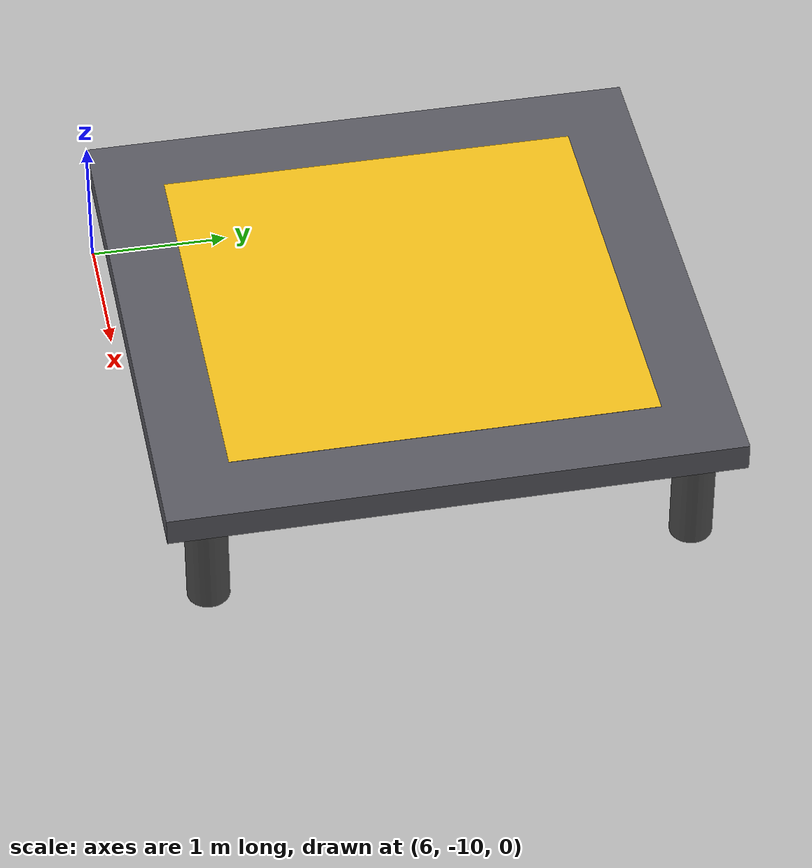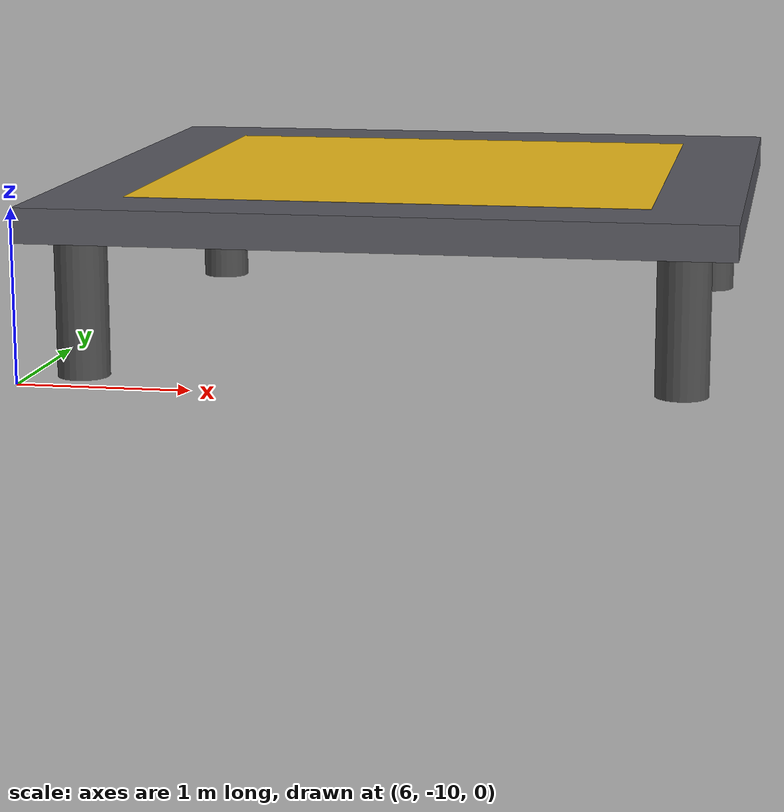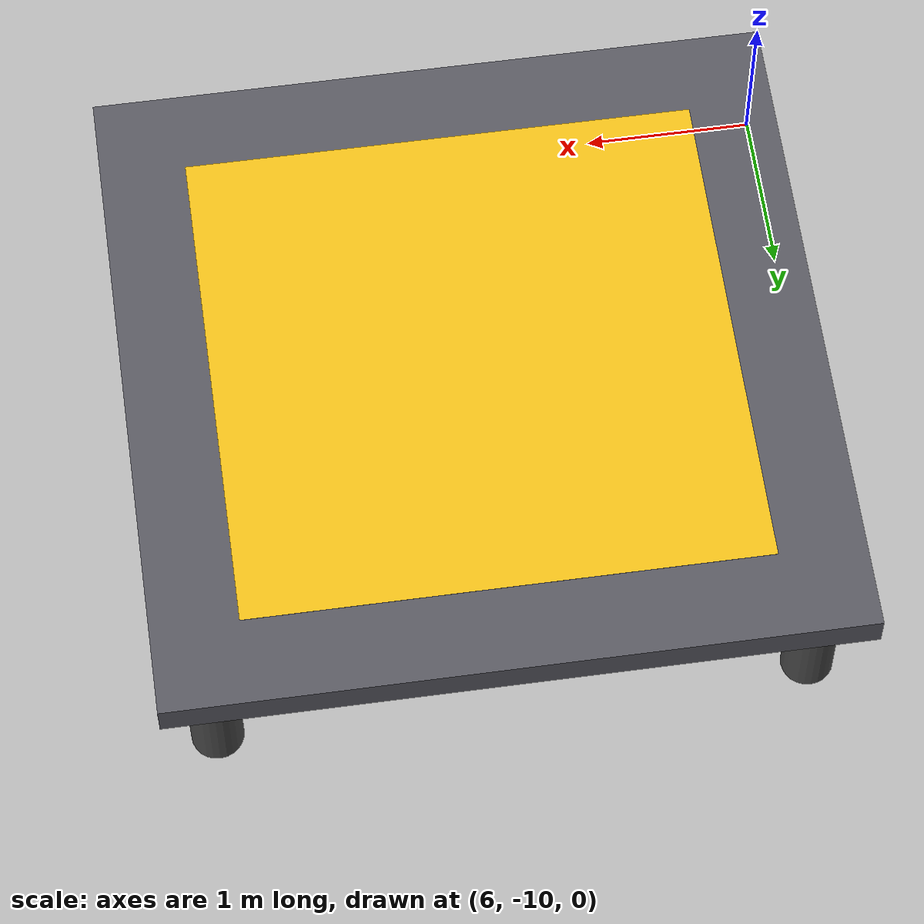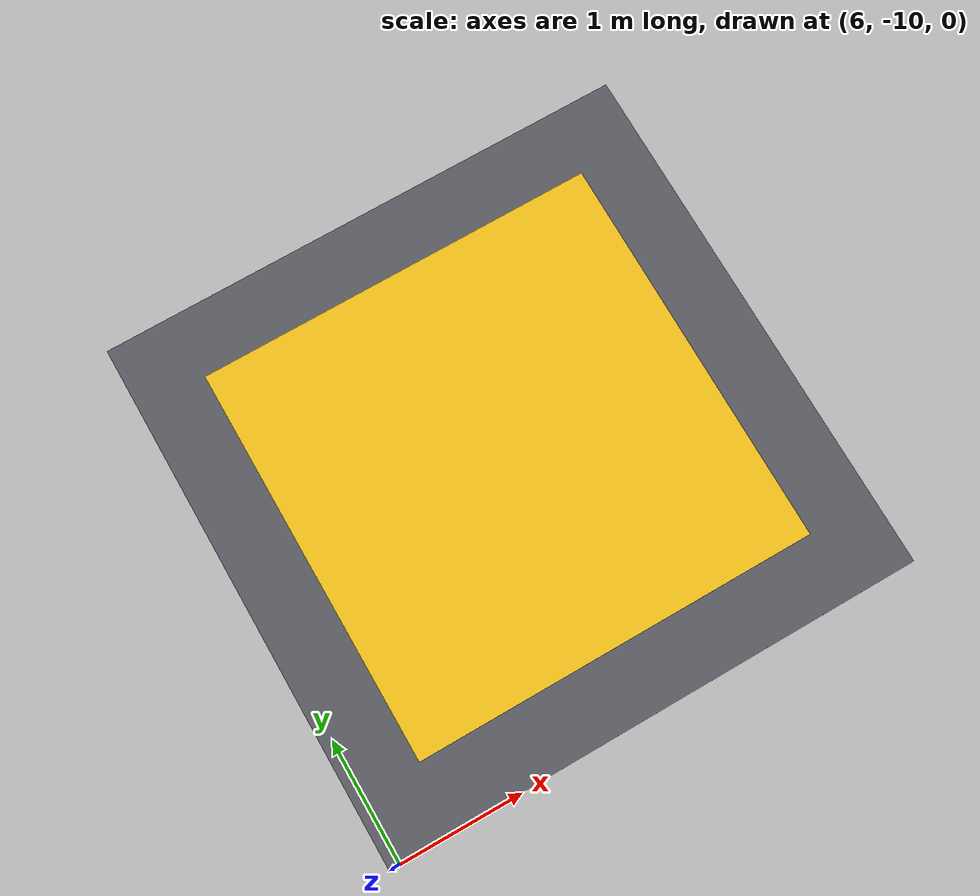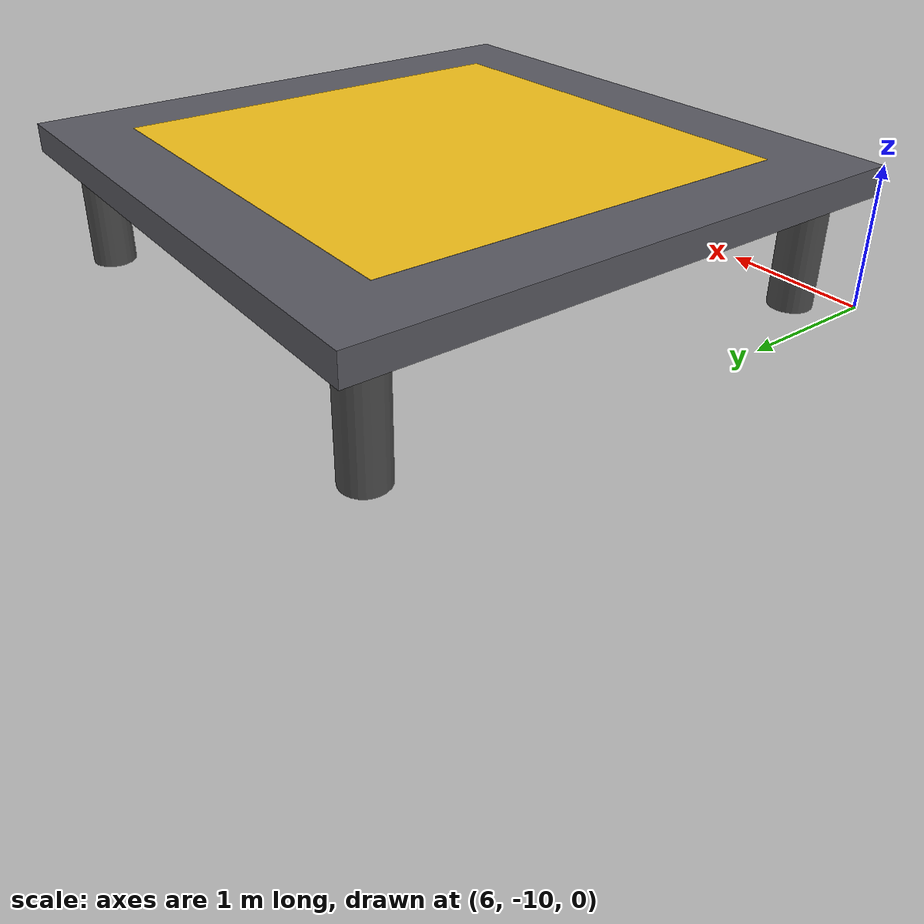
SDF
<?xml version="1.0"?>
<sdf version="1.12">
  <world name="default">

    <!-- Physics -->
    <physics name="default_physics" type="dart">
      <max_step_size>0.004</max_step_size>
    </physics>

    <spherical_coordinates>
      <surface_model>EARTH_WGS84</surface_model>
      <world_frame_orientation>ENU</world_frame_orientation>
      <latitude_deg>36.693509</latitude_deg>
      <longitude_deg>-121.936568</longitude_deg>
      <elevation>0</elevation>
      <heading_deg>0</heading_deg>
    </spherical_coordinates>

    <scene>
      <ambient>0.0 1.0 1.0</ambient>
      <background>0.0 0.7 0.8</background>
      <sky></sky>
      <grid>false</grid>
    </scene>

    <!-- Directional light (sun, attenuated by water) -->
    <light type="directional" name="sun">
      <cast_shadows>true</cast_shadows>
      <pose>0 0 20 0 0 0</pose>
      <diffuse>1 1 1 1</diffuse>
      <specular>0.5 0.5 0.5 1</specular>
      <attenuation>
        <range>1000</range>
        <constant>0.9</constant>
        <linear>0.01</linear>
        <quadratic>0.001</quadratic>
      </attenuation>
      <direction>-0.5 0.1 -0.9</direction>
    </light>

    <!-- Core systems -->
    <plugin
      filename="gz-sim-physics-system"
      name="gz::sim::systems::Physics">
    </plugin>

    <plugin
      filename="gz-sim-user-commands-system"
      name="gz::sim::systems::UserCommands">
    </plugin>

    <plugin
      filename="gz-sim-scene-broadcaster-system"
      name="gz::sim::systems::SceneBroadcaster">
    </plugin>

    <plugin
      filename="gz-sim-sensors-system"
      name="gz::sim::systems::Sensors">
    </plugin>

    <plugin
      filename="gz-sim-magnetometer-system"
      name="gz::sim::systems::Magnetometer">
      <use_units_gauss>false</use_units_gauss>
      <use_earth_frame_ned>false</use_earth_frame_ned>
    </plugin>

    <plugin
      filename="gz-sim-imu-system"
      name="gz::sim::systems::Imu">
    </plugin>

    <plugin
      filename="gz-sim-navsat-system"
      name="gz::sim::systems::NavSat">
    </plugin>

    <!-- Barometers: the air pressure system, for aerial vehicles such as the
         X500 that carry an air_pressure sensor. -->
    <plugin
      filename="gz-sim-air-pressure-system"
      name="gz::sim::systems::AirPressure">
    </plugin>

    <plugin
      filename="gz-maritime-buoyancy-system"
      name="gz::sim::maritime::Buoyancy">
      <graded_buoyancy>
        <default_density>1025</default_density>
        <density_change>
          <above_depth>0</above_depth>
          <density>1</density>
        </density_change>
      </graded_buoyancy>
      <enable_by_default>false</enable_by_default>
    </plugin>

    <plugin
      filename="gz-maritime-wind-system"
      name="gz::sim::maritime::Wind">
      <speed>0</speed>
      <direction>0</direction>
      <!-- The speed is at 10 m, as in weather reports; over the sea the wind
           falls off towards the water with this roughness length. -->
      <reference_height>10</reference_height>
      <roughness_length>0.0002</roughness_length>
    </plugin>

    <plugin
      filename="gz-maritime-ocean-current-system"
      name="gz::sim::maritime::OceanCurrent">
      <speed>0</speed>
      <direction>0</direction>
    </plugin>

    <plugin filename="gz-sim-waves-fft-system"
            name="gz::sim::systems::FftWaves">
      <update_rate>30</update_rate>
      <wave>
        <sea_state>1</sea_state>

      </wave>
    </plugin>

    <!-- GUI -->
    <gui fullscreen="0">
      <!-- 3D scene -->
      <plugin filename="MinimalScene" name="3D View">
        <gz-gui>
          <title>3D View</title>
          <property type="bool" key="showTitleBar">false</property>
          <property type="string" key="state">docked</property>
        </gz-gui>
        <engine>ogre2</engine>
        <scene>scene</scene>
        <ambient_light>0.4 0.4 0.4</ambient_light>
        <background_color>0.0 0.7 0.8</background_color>
        <!-- Matches asv_wave_sim's reference camera_pose for fair
             side-by-side visual comparison: 6m east of origin, 6m
             above water, pitched ~29° down. -->
        <camera_pose>-6 0 6 0 0.5 0</camera_pose>
        <camera_clip>
          <near>0.1</near>
          <far>50000</far>
        </camera_clip>
      </plugin>

      <!-- Scene management plugins -->
      <plugin filename="EntityContextMenuPlugin" name="Entity context menu">
        <gz-gui>
          <property key="state" type="string">floating</property>
          <property key="width" type="double">5</property>
          <property key="height" type="double">5</property>
          <property key="showTitleBar" type="bool">false</property>
        </gz-gui>
      </plugin>

      <plugin filename="GzSceneManager" name="Scene Manager">
        <gz-gui>
          <anchors target="3D View">
            <line own="right" target="right"/>
            <line own="top" target="top"/>
          </anchors>
          <property key="resizable" type="bool">false</property>
          <property key="width" type="double">5</property>
          <property key="height" type="double">5</property>
          <property key="state" type="string">floating</property>
          <property key="showTitleBar" type="bool">false</property>
        </gz-gui>
      </plugin>

      <plugin filename="InteractiveViewControl" name="Interactive view control">
        <gz-gui>
          <anchors target="3D View">
            <line own="right" target="right"/>
            <line own="top" target="top"/>
          </anchors>
          <property key="resizable" type="bool">false</property>
          <property key="width" type="double">5</property>
          <property key="height" type="double">5</property>
          <property key="state" type="string">floating</property>
          <property key="showTitleBar" type="bool">false</property>
        </gz-gui>
      </plugin>

      <plugin filename="CameraTracking" name="Camera Tracking">
        <gz-gui>
          <anchors target="3D View">
            <line own="right" target="right"/>
            <line own="top" target="top"/>
          </anchors>
          <property key="resizable" type="bool">false</property>
          <property key="width" type="double">5</property>
          <property key="height" type="double">5</property>
          <property key="state" type="string">floating</property>
          <property key="showTitleBar" type="bool">false</property>
        </gz-gui>
      </plugin>

      <plugin filename="MarkerManager" name="Marker manager">
        <gz-gui>
          <anchors target="3D View">
            <line own="right" target="right"/>
            <line own="top" target="top"/>
          </anchors>
          <property key="resizable" type="bool">false</property>
          <property key="width" type="double">5</property>
          <property key="height" type="double">5</property>
          <property key="state" type="string">floating</property>
          <property key="showTitleBar" type="bool">false</property>
        </gz-gui>
        <warn_on_action_failure>false</warn_on_action_failure>
      </plugin>

      <plugin filename="SelectEntities" name="Select Entities">
        <gz-gui>
          <anchors target="3D View">
            <line own="right" target="right"/>
            <line own="top" target="top"/>
          </anchors>
          <property key="resizable" type="bool">false</property>
          <property key="width" type="double">5</property>
          <property key="height" type="double">5</property>
          <property key="state" type="string">floating</property>
          <property key="showTitleBar" type="bool">false</property>
        </gz-gui>
      </plugin>

      <plugin filename="VisualizationCapabilities" name="Visualization Capabilities">
        <gz-gui>
          <anchors target="3D View">
            <line own="right" target="right"/>
            <line own="top" target="top"/>
          </anchors>
          <property key="resizable" type="bool">false</property>
          <property key="width" type="double">5</property>
          <property key="height" type="double">5</property>
          <property key="state" type="string">floating</property>
          <property key="showTitleBar" type="bool">false</property>
        </gz-gui>
      </plugin>

      <plugin filename="Spawn" name="Spawn Entities">
        <gz-gui>
          <anchors target="3D View">
            <line own="right" target="right"/>
            <line own="top" target="top"/>
          </anchors>
          <property key="resizable" type="bool">false</property>
          <property key="width" type="double">5</property>
          <property key="height" type="double">5</property>
          <property key="state" type="string">floating</property>
          <property key="showTitleBar" type="bool">false</property>
        </gz-gui>
      </plugin>

      <!-- World control -->
      <plugin filename="WorldControl" name="World control">
        <gz-gui>
          <title>World control</title>
          <property type="bool" key="showTitleBar">false</property>
          <property type="bool" key="resizable">false</property>
          <property type="double" key="height">72</property>
          <property type="double" key="z">1</property>
          <property type="string" key="state">floating</property>
          <anchors target="3D View">
            <line own="left" target="left"/>
            <line own="bottom" target="bottom"/>
          </anchors>
        </gz-gui>
        <play_pause>true</play_pause>
        <step>true</step>
        <start_paused>false</start_paused>
      </plugin>

      <!-- World statistics -->
      <plugin filename="WorldStats" name="World stats">
        <gz-gui>
          <title>World stats</title>
          <property type="bool" key="showTitleBar">false</property>
          <property type="bool" key="resizable">false</property>
          <property type="double" key="height">110</property>
          <property type="double" key="width">290</property>
          <property type="double" key="z">1</property>
          <property type="string" key="state">floating</property>
          <anchors target="3D View">
            <line own="right" target="right"/>
            <line own="bottom" target="bottom"/>
          </anchors>
        </gz-gui>
        <sim_time>true</sim_time>
        <real_time>true</real_time>
        <real_time_factor>true</real_time_factor>
        <iterations>true</iterations>
      </plugin>

      <plugin filename="ComponentInspector" name="Component Inspector">
        <gz-gui>
          <title>Inspector</title>
          <property type="string" key="state">docked_collapsed</property>
        </gz-gui>
      </plugin>

      <!-- Ocean current and wind panels (gz_maritime_gui): change each
           field, and draw it as arrows, off until turned on in its panel. -->
      <plugin filename="OceanCurrentPanel" name="Ocean current">
        <gz-gui>
          <title>Ocean current</title>
          <property type="string" key="state">docked</property>
        </gz-gui>
        <show_arrows>false</show_arrows>
      </plugin>

      <plugin filename="WindPanel" name="Wind">
        <gz-gui>
          <title>Wind</title>
          <property type="string" key="state">docked</property>
        </gz-gui>
        <show_arrows>false</show_arrows>
      </plugin>
    </gui>

    <!-- Water surface visual (wave-displaced mesh): one include draws a
         1 km square of tiles around the origin. -->
    <include>
      <uri>model://water_surface</uri>
    </include>

    <include>
      <uri>model://landing_pad</uri>
      <pose>8 -8 0 0 0 0</pose>
    </include>

    <!-- No vehicles here: every platform shares this world, so vehicles are
         spawned into it (ros_gz_sim create, or the /world/default/create
         service) and float by the collisions they mark. -->

  </world>
</sdf>

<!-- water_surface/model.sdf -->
<sdf version="1.10">
  <model name="water_surface">
    <static>true</static>
    <link name="link">
      <visual name="water">
        <geometry>
          <mesh>
            <uri>meshes/water.dae</uri>
          </mesh>
        </geometry>
        <plugin filename="gz-sim-water-visual-system"
                name="gz::sim::systems::WaterVisual">
          <shader>
            <fft_vertex>shaders/fft_water_vs_330.glsl</fft_vertex>
            <fragment>shaders/water_fs_330.glsl</fragment>
            <parameters>
              <rescale>0.5</rescale>
              <!-- Effective bumpmap tiling is bumpScale × 16 in the
                   VS (see fft_water_vs_330.glsl). 64 × 16 = 1024
                   bumpmap repeats per uv unit. -->
              <bumpScale>64 64</bumpScale>
              <bumpSpeed>0.01 0.01</bumpSpeed>
              <hdrMultiplier>0.4</hdrMultiplier>
              <fresnelPower>5.0</fresnelPower>
              <shallowColor>0 0.1 0.3 1.0</shallowColor>
              <deepColor>0 0.05 0.2 1.0</deepColor>
            </parameters>
          </shader>
          <textures>
            <bumpMap>textures/wave_normals.dds</bumpMap>
            <cubeMap>textures/skybox_lowres.dds</cubeMap>
          </textures>
          <tiles_radius>7</tiles_radius>
        </plugin>

        <plugin filename="gz-sim-waves-gerstner-gui"
                name="gz::sim::systems::GerstnerWavesGui"/>
        <plugin filename="gz-sim-waves-fft-gui"
                name="gz::sim::systems::FftWavesGui"/>
      </visual>
    </link>
  </model>
</sdf>

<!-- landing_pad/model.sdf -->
<sdf version="1.12">
  <model name="landing_pad">
    <static>true</static>
    <link name="deck">
      <collision name="deck_collision">
        <pose>0 0 0.9 0 0 0</pose>
        <geometry><box><size>4 4 0.2</size></box></geometry>
      </collision>
      <visual name="deck_visual">
        <pose>0 0 0.9 0 0 0</pose>
        <geometry><box><size>4 4 0.2</size></box></geometry>
        <material>
          <ambient>0.35 0.35 0.38 1</ambient>
          <diffuse>0.35 0.35 0.38 1</diffuse>
        </material>
      </visual>
      <visual name="marking">
        <pose>0 0 1.001 0 0 0</pose>
        <geometry><box><size>3 3 0.002</size></box></geometry>
        <material>
          <ambient>0.95 0.75 0.1 1</ambient>
          <diffuse>0.95 0.75 0.1 1</diffuse>
        </material>
      </visual>
      <visual name="pylon_0">
        <pose>1.7 1.7 -0.6 0 0 0</pose>
        <geometry><cylinder><radius>0.15</radius><length>2.8</length></cylinder></geometry>
        <material><ambient>0.3 0.3 0.3 1</ambient><diffuse>0.3 0.3 0.3 1</diffuse></material>
      </visual>
      <visual name="pylon_1">
        <pose>-1.7 1.7 -0.6 0 0 0</pose>
        <geometry><cylinder><radius>0.15</radius><length>2.8</length></cylinder></geometry>
        <material><ambient>0.3 0.3 0.3 1</ambient><diffuse>0.3 0.3 0.3 1</diffuse></material>
      </visual>
      <visual name="pylon_2">
        <pose>1.7 -1.7 -0.6 0 0 0</pose>
        <geometry><cylinder><radius>0.15</radius><length>2.8</length></cylinder></geometry>
        <material><ambient>0.3 0.3 0.3 1</ambient><diffuse>0.3 0.3 0.3 1</diffuse></material>
      </visual>
      <visual name="pylon_3">
        <pose>-1.7 -1.7 -0.6 0 0 0</pose>
        <geometry><cylinder><radius>0.15</radius><length>2.8</length></cylinder></geometry>
        <material><ambient>0.3 0.3 0.3 1</ambient><diffuse>0.3 0.3 0.3 1</diffuse></material>
      </visual>
    </link>
  </model>
</sdf>
